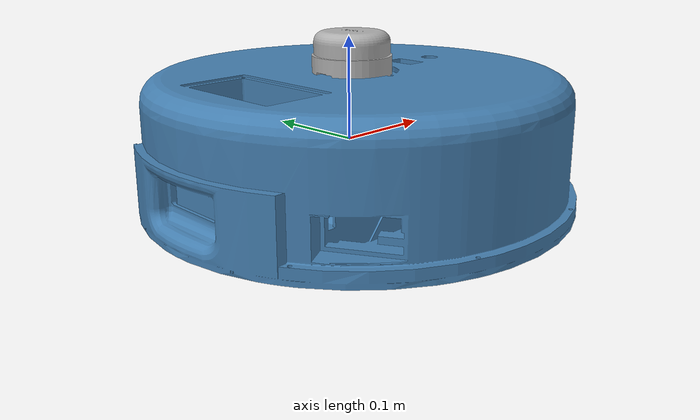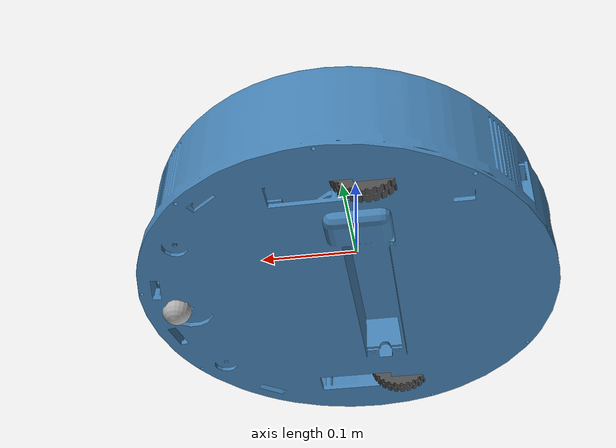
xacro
<?xml version="1.0"?>
<robot xmlns:xacro="http://ros.org/wiki/xacro" name="soly">
  <xacro:include filename="$(find soly)/urdf/robot.gazebo"/>
  <xacro:include filename="$(find soly)/urdf/sensor.xacro"/>

  <link name="base_link">
    <inertial>
      <origin xyz="-0.0023666 -0.0061008 -0.0017152" rpy="0 0 0" />
      <mass value="3.1116" />
      <inertia ixx="0.030574" ixy="-0.0004163" ixz="-1.3976E-05" iyy="0.03032" iyz="-0.00015896" izz="0.055894" />
    </inertial>
    <visual>
      <origin xyz="0 0 0" rpy="0 0 0" />
      <geometry>
        <mesh filename="package://soly/meshes/base_link.STL" />
      </geometry>
      <material name="">
        <color rgba="0.274 0.509 0.705 1" />
      </material>
    </visual>
    <collision>
      <origin xyz="0 0 0" rpy="0 0 0" />
      <geometry>
        <mesh filename="package://soly/meshes/base_link.STL" />
      </geometry>
    </collision>
  </link>

  <link name="right_wheel_Link">
    <inertial>
      <origin xyz="0 -0.0075 0" rpy="0 0 0" />
      <mass value="0.054243838245486" />
      <inertia ixx="1.71160505001731E-05" ixy="-8.94718916174317E-22" ixz="-5.79682761060264E-21"
               iyy="3.21979570661404E-05" iyz="8.02608461219266E-22" izz="1.7116050500173E-05" />
    </inertial>
    <visual>
      <origin xyz="0 0 0" rpy="0 0 0" />
      <geometry>
        <mesh filename="package://soly/meshes/right_wheel_Link.STL" />
      </geometry>
      <material name="">
        <color rgba="0.298 0.298 0.298 1" />
      </material>
    </visual>
    <collision>
      <origin xyz="0 0 0" rpy="0 0 0" />
      <geometry>
        <mesh filename="package://soly/meshes/right_wheel_Link.STL" />
      </geometry>
    </collision>
  </link>

  <joint name="right_wheel_joint" type="continuous">
    <origin xyz="-0.029871 0.15291 -0.034743" rpy="0 0 0" />
    <parent link="base_link" />
    <child link="right_wheel_Link" />
    <axis xyz="0 1 0" />
  </joint>

  <link name="left_wheel_link">
    <inertial>
      <origin xyz="-5.55E-17 0.0075 2.77E-17" rpy="0 0 0" />
      <mass value="0.054243838245486" />
      <inertia ixx="1.7116050500173E-05" ixy="4.71102933667598E-21" ixz="-6.16932141916073E-21"
               iyy="3.21979570661404E-05" iyz="2.82263779720997E-21" izz="1.7116050500173E-05" />
    </inertial>
    <visual>
      <origin xyz="0 0 0" rpy="0 0 0" />
      <geometry>
        <mesh filename="package://soly/meshes/left_wheel_link.STL" />
      </geometry>
      <material name="">
        <color rgba="0.298 0.298 0.298 1" />
      </material>
    </visual>
    <collision>
      <origin xyz="0 0 0" rpy="0 0 0" />
      <geometry>
        <mesh filename="package://soly/meshes/left_wheel_link.STL" />
      </geometry>
    </collision>
  </link>

  <joint name="left_wheel_joint" type="continuous">
    <origin xyz="-0.029871 -0.16039 -0.034743" rpy="0 0 0" />
    <parent link="base_link" />
    <child link="left_wheel_link" />
    <axis xyz="0 -1 0" />
  </joint>

  <link name="link_1">
    <inertial>
      <origin xyz="0 0 0" rpy="0 0 0"/>
      <mass value="0.0286112"/>
      <inertia ixx="2.58e-06" ixy="0" ixz="0" iyy="2.58e-06" iyz="0" izz="2.58e-06"/>
    </inertial>
    <visual>
      <origin xyz="0 0 0" rpy="0 0 0"/>
      <geometry>
        <sphere radius="0.015"/>
      </geometry>
      <material name="Gazebo/Grey">
        <color rgba="0.7 0.7 0.7 1"/>
      </material>
    </visual>
    <collision>
      <origin xyz="0 0 0" rpy="0 0 0"/>
      <geometry>
        <sphere radius="0.015"/>
      </geometry>
    </collision>
  </link>

  <joint name="link_1_joint" type="continuous">
    <parent link="base_link"/>
    <child link="link_1"/>
    <origin xyz="0.186367 -0.001405 -0.055595" rpy="0.003639 0.025 0.147249"/>
  </joint>
</robot>

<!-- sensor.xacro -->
<robot xmlns:xacro="http://ros.org/wiki/xacro" name="robot">

  <link name="lidar_link">
    <inertial>
      <origin xyz="-0.0300318871029288 -1.4396172640152E-05 -0.0117015085354246" rpy="0 0 0" />
      <mass value="0.206728439544989" />
      <inertia ixx="9.85814795131668E-05" ixy="6.05897051150735E-08" ixz="2.73099304949762E-06"
               iyy="9.39878643673402E-05" iyz="3.60751965637769E-08" izz="0.000137433441323384" />
    </inertial>
    <visual>
      <origin xyz="0 0 0" rpy="0 0 0" />
      <geometry>
        <mesh filename="package://soly/meshes/lidar_link.STL" />
      </geometry>
      <material name="lidar_material">
        <color rgba="0.698 0.698 0.698 1" />
      </material>
    </visual>
    <collision>
      <origin xyz="0 0 0" rpy="0 0 0" />
      <geometry>
        <mesh filename="package://soly/meshes/lidar_link.STL" />
      </geometry>
    </collision>
  </link>

  <joint name="lidar_joint" type="fixed">
    <origin xyz="0.029596 -0.0037429 0.095257" rpy="0 0 0" />
    <parent link="base_link" />
    <child link="lidar_link" />
    <dontPublish>true</dontPublish> <!-- Add this line -->

  </joint>

  <link name="ultrasonic_link">
    <inertial>
      <origin xyz="-0.0135129398527418 -0.000885994358649805 0.000138154717298" rpy="0 0 0" />
      <mass value="0.00391542529593063" />
      <inertia ixx="3.1796509412328E-07" ixy="1.79491252116504E-23" ixz="-3.28175160545291E-11"
               iyy="1.03578988309517E-07" iyz="1.13097335529237E-09" izz="2.48381258422786E-07" />
    </inertial>
    <visual>
      <origin xyz="0 0 0" rpy="0 0 0" />
      <geometry>
        <mesh filename="package://soly/meshes/ultrasonic_link.STL" />
      </geometry>
      <material name="ultrasonic_material">
        <color rgba="0.792 0.820 0.933 1" />
      </material>
    </visual>
    <collision>
      <origin xyz="0 0 0" rpy="0 0 0" />
      <geometry>
        <mesh filename="package://soly/meshes/ultrasonic_link.STL" />
      </geometry>
    </collision>
  </link>

  <joint name="ultrasonic_joint" type="fixed">
    <origin xyz="0.20263 -0.0032064 -0.013163" rpy="0 0 0" />
    <parent link="base_link" />
    <child link="ultrasonic_link" />
   <dontPublish>true</dontPublish> <!-- Add this line -->

  </joint>
</robot>
